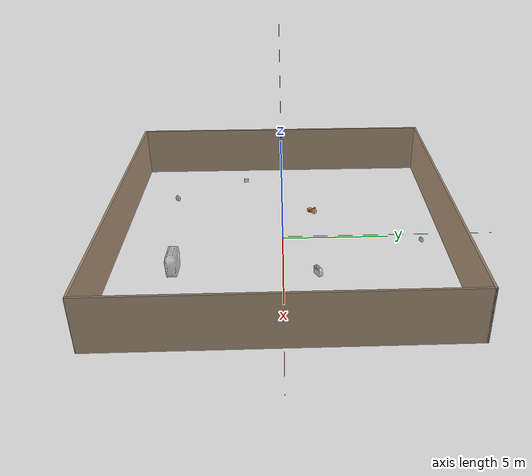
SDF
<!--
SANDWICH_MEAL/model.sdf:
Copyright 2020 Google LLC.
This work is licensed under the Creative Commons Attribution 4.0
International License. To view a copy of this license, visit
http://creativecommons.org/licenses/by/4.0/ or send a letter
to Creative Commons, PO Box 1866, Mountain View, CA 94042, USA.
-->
<sdf version="1.9">
 <world name="iris_runway_15x15_walls">
  <physics name="1ms" type="ignore">
   <max_step_size>0.001</max_step_size>
   <real_time_factor>1.0</real_time_factor>
  </physics>
  <plugin filename="gz-sim-physics-system" name="gz::sim::systems::Physics"/>
  <plugin filename="gz-sim-sensors-system" name="gz::sim::systems::Sensors">
   <render_engine>ogre2</render_engine>
  </plugin>
  <plugin filename="gz-sim-user-commands-system" name="gz::sim::systems::UserCommands"/>
  <plugin filename="gz-sim-scene-broadcaster-system" name="gz::sim::systems::SceneBroadcaster"/>
  <plugin filename="gz-sim-imu-system" name="gz::sim::systems::Imu"/>
  <plugin filename="gz-sim-navsat-system" name="gz::sim::systems::NavSat"/>
  <scene><ambient>1.0 1.0 1.0</ambient><background>0.8 0.8 0.8</background></scene>
  <spherical_coordinates>
   <latitude_deg>-35.363262</latitude_deg>
   <longitude_deg>149.165237</longitude_deg>
   <elevation>584</elevation>
   <heading_deg>0</heading_deg>
   <surface_model>EARTH_WGS84</surface_model>
  </spherical_coordinates>
  <light type="directional" name="sun">
   <pose>0 0 10 0 0 0</pose>
   <diffuse>0.8 0.8 0.8 1</diffuse>
   <specular>0.8 0.8 0.8 1</specular>
   <attenuation>
    <range>1000</range>
    <constant>0.9</constant>
    <linear>0.01</linear>
    <quadratic>0.001</quadratic>
   </attenuation>
   <direction>-0.5 0.1 -0.9</direction>
  </light>
  <model name="axes">
   <static>1</static>
   <link name="link">
    <visual name="r">
     <cast_shadows>0</cast_shadows>
     <pose>5 0 0.1 0 0 0</pose>
     <geometry><box><size>10 0.01 0.01</size></box></geometry>
     <material>
      <ambient>1 0 0 0.8</ambient>
      <diffuse>1 0 0 0.8</diffuse>
      <emissive>1 0 0 0.8</emissive>
      <specular>0.5 0.5 0.5 0.8</specular>
     </material>
    </visual>
    <visual name="g">
     <cast_shadows>0</cast_shadows>
     <pose>0 5 0.1 0 0 0</pose>
     <geometry><box><size>0.01 10 0.01</size></box></geometry>
     <material>
      <ambient>0 1 0 0.8</ambient>
      <diffuse>0 1 0 0.8</diffuse>
      <emissive>0 1 0 0.8</emissive>
      <specular>0.5 0.5 0.5 0.8</specular>
     </material>
    </visual>
    <visual name="b">
     <cast_shadows>0</cast_shadows>
     <pose>0 0 5.1 0 0 0</pose>
     <geometry><box><size>0.01 0.01 10</size></box></geometry>
     <material>
      <ambient>0 0 1 0.8</ambient>
      <diffuse>0 0 1 0.8</diffuse>
      <emissive>0 0 1 0.8</emissive>
      <specular>0.5 0.5 0.5 0.8</specular>
     </material>
    </visual>
    <sensor name="navsat_sensor" type="navsat"><always_on>1</always_on><update_rate>1</update_rate></sensor>
   </link>
  </model>
  <include>
   <name>SANDWICH_MEAL</name>
   <uri>model://SANDWICH_MEAL</uri>
   <pose>2.5 -4.8 0 0 0 0</pose>
   <scale>5.0 5.0 5.0</scale>
   <static>true</static>
  </include>
  <include>
   <name>US_Army_Stash_Lunch_Bag</name>
   <uri>model://US_Army_Stash_Lunch_Bag</uri>
   <pose>-6.0 -2.0 0 0 0 -1.57</pose>
   <static>true</static>
  </include>
  <include>
   <name>Olive_Kids_Dinousar_Land_Lunch_Box</name>
   <uri>model://Olive_Kids_Dinosaur_Land_Lunch_Box</uri>
   <pose>0.5 6.5 0 0 0 0.5</pose>
   <static>true</static>
  </include>
  <include>
   <name>Olive_Kids_Butterfly_Garden_Munch_n_Lunch_Bag</name>
   <uri>model://Olive_Kids_Butterfly_Garden_Munch_n_Lunch_Bag</uri>
   <pose>-4.0 -5.5 0 0 0 0.8</pose>
   <static>true</static>
  </include>
  <include>
   <name>hot_dog</name>
   <uri>model://hot_dog</uri>
   <pose>-2.5 1.5 0 0 0 0.8</pose>
   <static>true</static>
  </include>
  <include>
   <name>ACE_Coffee_Mug_Kristen_16_oz_cup</name>
   <uri>model://ACE_Coffee_Mug_Kristen_16_oz_cup</uri>
   <pose>3.0 1.5 0 0 0 0.5</pose>
   <static>true</static>
  </include>
  <model name="wall_north">
   <static>true</static>
   <pose>0 7.55 1.25 0 0 0</pose>
   <link name="link">
    <collision name="collision"><geometry><box><size>15.2 0.1 2.5</size></box></geometry></collision>
    <visual name="visual">
     <geometry><box><size>15.2 0.1 2.5</size></box></geometry>
     <material><ambient>0.55 0.45 0.35 1</ambient><diffuse>0.65 0.55 0.45 1</diffuse></material>
    </visual>
   </link>
  </model>
  <model name="wall_south">
   <static>true</static>
   <pose>0 -7.55 1.25 0 0 0</pose>
   <link name="link">
    <collision name="collision"><geometry><box><size>15.2 0.1 2.5</size></box></geometry></collision>
    <visual name="visual">
     <geometry><box><size>15.2 0.1 2.5</size></box></geometry>
     <material><ambient>0.55 0.45 0.35 1</ambient><diffuse>0.65 0.55 0.45 1</diffuse></material>
    </visual>
   </link>
  </model>
  <model name="wall_east">
   <static>true</static>
   <pose>7.55 0 1.25 0 0 0</pose>
   <link name="link">
    <collision name="collision"><geometry><box><size>0.1 15.2 2.5</size></box></geometry></collision>
    <visual name="visual">
     <geometry><box><size>0.1 15.2 2.5</size></box></geometry>
     <material><ambient>0.45 0.38 0.30 1</ambient><diffuse>0.55 0.48 0.40 1</diffuse></material>
    </visual>
   </link>
  </model>
  <model name="wall_west">
   <static>true</static>
   <pose>-7.55 0 1.25 0 0 0</pose>
   <link name="link">
    <collision name="collision"><geometry><box><size>0.1 15.2 2.5</size></box></geometry></collision>
    <visual name="visual">
     <geometry><box><size>0.1 15.2 2.5</size></box></geometry>
     <material><ambient>0.45 0.38 0.30 1</ambient><diffuse>0.55 0.48 0.40 1</diffuse></material>
    </visual>
   </link>
  </model>
 </world>
</sdf>

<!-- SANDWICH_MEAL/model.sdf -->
<sdf version="1.6">
  <model name="SANDWICH_MEAL">
    <link name="link_0">
      <visual name="visual">
        <geometry>
          <mesh>
            <uri>meshes/model.obj</uri>
            <scale>5.0 5.0 5.0</scale>
          </mesh>
        </geometry>
      </visual>
      <collision name="collision_0">
        <geometry>
          <mesh>
            <uri>meshes/model.obj</uri>
            <scale>5.0 5.0 5.0</scale>
          </mesh>
        </geometry>
      </collision>
    </link>
  </model>
</sdf>

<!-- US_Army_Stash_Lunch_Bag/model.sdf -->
<sdf version="1.6">
  <model name="US_Army_Stash_Lunch_Bag">
    <link name="link_0">
      <visual name="visual">
        <geometry>
          <mesh>
            <uri>meshes/model.obj</uri>
          </mesh>
        </geometry>
      </visual>
      <collision name="collision_0">
        <geometry>
          <mesh>
            <uri>meshes/model.obj</uri>
          </mesh>
        </geometry>
      </collision>
    </link>
  </model>
</sdf>

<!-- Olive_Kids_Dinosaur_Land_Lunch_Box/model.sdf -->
<sdf version="1.6">
  <model name="Olive_Kids_Dinosaur_Land_Lunch_Box">
    <link name="link_0">
      <visual name="visual">
        <geometry>
          <mesh>
            <uri>meshes/model.obj</uri>
          </mesh>
        </geometry>
      </visual>
      <collision name="collision_0">
        <geometry>
          <mesh>
            <uri>meshes/model.obj</uri>
          </mesh>
        </geometry>
      </collision>
    </link>
  </model>
</sdf>

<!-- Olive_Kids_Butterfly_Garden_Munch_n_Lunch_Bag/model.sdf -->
<sdf version="1.6">
  <model name="Olive_Kids_Butterfly_Garden_Munch_n_Lunch_Bag">
    <link name="link_0">
      <visual name="visual">
        <geometry>
          <mesh>
            <uri>meshes/model.obj</uri>
          </mesh>
        </geometry>
      </visual>
      <collision name="collision_0">
        <geometry>
          <mesh>
            <uri>meshes/model.obj</uri>
          </mesh>
        </geometry>
      </collision>
    </link>
  </model>
</sdf>

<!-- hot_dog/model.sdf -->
<sdf version="1.9">
  <model name="hot_dog">
    <static>true</static>
    <link name="link">

      <!-- bun (tan elongated box) -->
      <visual name="bun">
        <pose>0 0 0.075 0 0 0</pose>
        <geometry>
          <box><size>0.5 0.18 0.15</size></box>
        </geometry>
        <material>
          <ambient>0.85 0.65 0.35 1</ambient>
          <diffuse>0.85 0.65 0.35 1</diffuse>
        </material>
      </visual>
      <collision name="bun_col">
        <pose>0 0 0.075 0 0 0</pose>
        <geometry>
          <box><size>0.5 0.18 0.15</size></box>
        </geometry>
      </collision>

      <!-- sausage (reddish-brown cylinder) -->
      <visual name="sausage">
        <pose>0 0 0.115 1.5708 0 0</pose>
        <geometry>
          <cylinder>
            <radius>0.055</radius>
            <length>0.46</length>
          </cylinder>
        </geometry>
        <material>
          <ambient>0.55 0.18 0.10 1</ambient>
          <diffuse>0.55 0.18 0.10 1</diffuse>
        </material>
      </visual>
      <collision name="sausage_col">
        <pose>0 0 0.115 1.5708 0 0</pose>
        <geometry>
          <cylinder>
            <radius>0.055</radius>
            <length>0.46</length>
          </cylinder>
        </geometry>
      </collision>

    </link>
  </model>
</sdf>

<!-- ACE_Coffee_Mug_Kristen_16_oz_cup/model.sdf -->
<sdf version="1.6">
  <model name="ACE_Coffee_Mug_Kristen_16_oz_cup">
    <link name="link_0">
      <visual name="visual">
        <geometry>
          <mesh>
            <uri>meshes/model.obj</uri>
            <scale>2 2 2</scale>
          </mesh>
        </geometry>
      </visual>
      <collision name="collision_0">
        <geometry>
          <mesh>
            <uri>meshes/model.obj</uri>
            <scale>2 2 2</scale>
          </mesh>
        </geometry>
      </collision>
    </link>
  </model>
</sdf>
